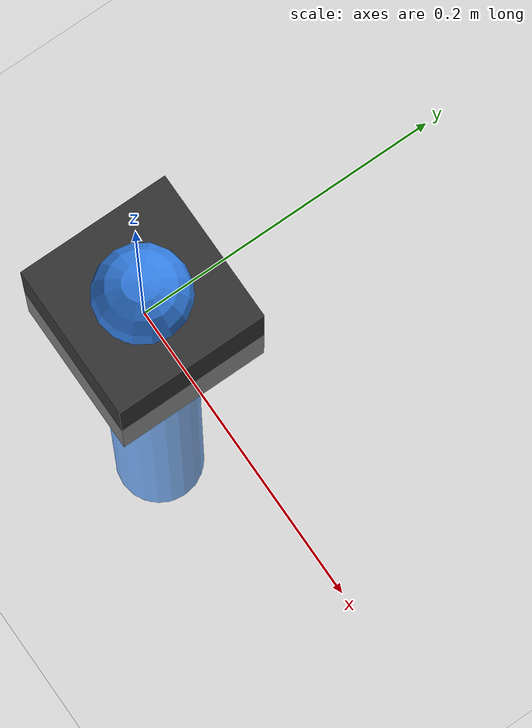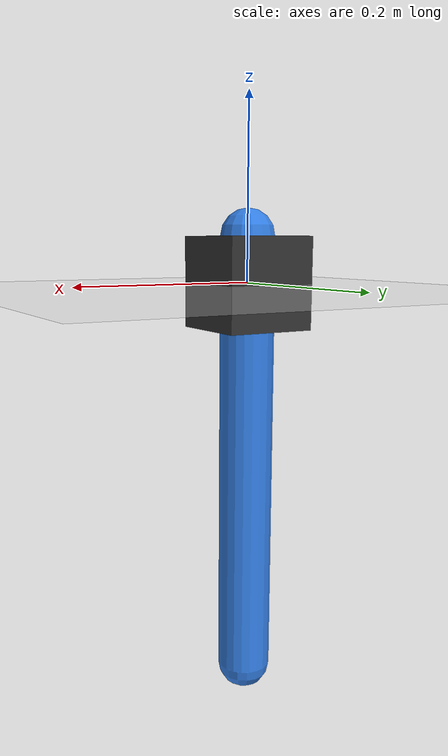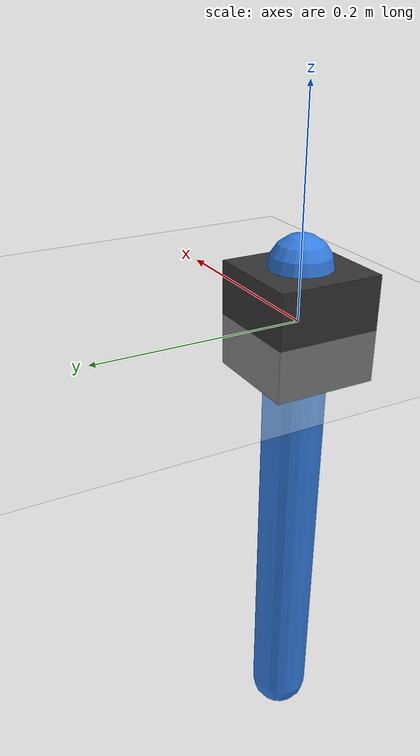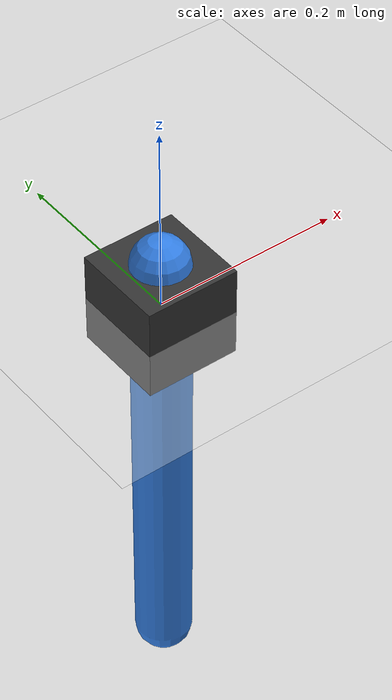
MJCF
<mujoco model="simple_pendulum">
  <option gravity="0 0 -9.81" timestep="0.01"/>

  <worldbody>
    <geom name="floor" type="plane" size="2 2 0.1" rgba="0.9 0.9 0.9 1"/>

    <body name="base" pos="0 0 0">
      <geom name="base_geom" type="box" size="0.05 0.05 0.05" rgba="0.2 0.2 0.2 1"/>

      <body name="pendulum" pos="0 0 0.05">
        <joint
          name="hinge"
          type="hinge"
          axis="0 1 0"
          pos="0 0 0"
          range="-90 90"
          damping="0.1"/>

        <geom
          name="rod"
          type="capsule"
          fromto="0 0 0 0 0 -0.5"
          size="0.03"
          density="600"
          rgba="0.2 0.5 0.9 1"/>

        <site
          name="tip"
          pos="0 0 -0.5"
          size="0.025"
          rgba="1 0.2 0.2 1"/>
      </body>
    </body>
  </worldbody>

  <actuator>
    <motor name="hinge_motor" joint="hinge" gear="20" ctrlrange="-1 1"/>
  </actuator>
</mujoco>
